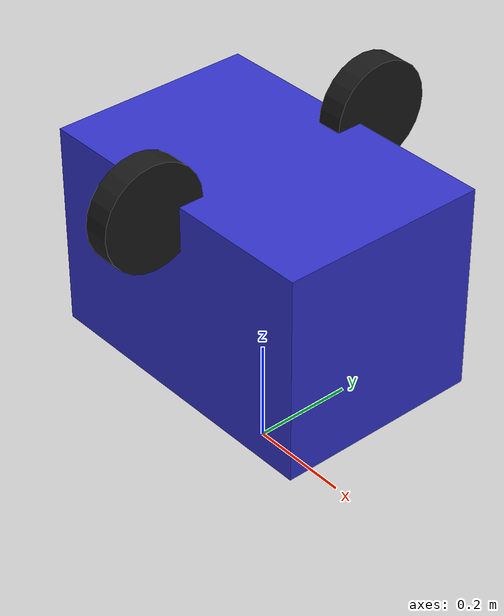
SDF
<?xml version="1.0"?>
<sdf version="1.7">
  <model name="test_box">
    <pose>0 0 0.4 0 0 0</pose>

    <link name="base_link">
      <inertial>
        <mass>2.0</mass>
        <inertia>
          <ixx>0.2</ixx>
          <iyy>0.2</iyy>
          <izz>0.2</izz>
        </inertia>
      </inertial>
      <collision name="collision">
        <geometry>
          <box>
            <size>0.6 0.4 0.4</size>
          </box>
        </geometry>
      </collision>
      <visual name="visual">
        <geometry>
          <box>
            <size>0.6 0.4 0.4</size>
          </box>
        </geometry>
        <material>
          <ambient>0.2 0.2 0.8 1</ambient>
          <diffuse>0.2 0.2 0.8 1</diffuse>
        </material>
      </visual>
    </link>

    <link name="left_wheel">
      <pose>0 0.25 0.2 0 1.5708 0</pose>
      <collision name="collision">
        <geometry>
          <cylinder>
            <radius>0.1</radius>
            <length>0.05</length>
          </cylinder>
        </geometry>
      </collision>
      <visual name="visual">
        <geometry>
          <cylinder>
            <radius>0.1</radius>
            <length>0.05</length>
          </cylinder>
        </geometry>
        <material>
          <ambient>0.1 0.1 0.1 1</ambient>
        </material>
      </visual>
    </link>

    <link name="right_wheel">
      <pose>0 -0.25 0.2 0 1.5708 0</pose>
      <collision name="collision">
        <geometry>
          <cylinder>
            <radius>0.1</radius>
            <length>0.05</length>
          </cylinder>
        </geometry>
      </collision>
      <visual name="visual">
        <geometry>
          <cylinder>
            <radius>0.1</radius>
            <length>0.05</length>
          </cylinder>
        </geometry>
        <material>
          <ambient>0.1 0.1 0.1 1</ambient>
        </material>
      </visual>
    </link>

    <joint name="left_wheel_joint" type="revolute">
      <parent>base_link</parent>
      <child>left_wheel</child>
      <pose>0 0.25 0.2 0 0 0</pose>
      <axis>
        <xyz>0 1 0</xyz>
        <limit>
          <lower>-1e16</lower>
          <upper>1e16</upper>
        </limit>
      </axis>
    </joint>

    <joint name="right_wheel_joint" type="revolute">
      <parent>base_link</parent>
      <child>right_wheel</child>
      <pose>0 -0.25 0.2 0 0 0</pose>
      <axis>
        <xyz>0 1 0</xyz>
        <limit>
          <lower>-1e16</lower>
          <upper>1e16</upper>
        </limit>
      </axis>
    </joint>

    <plugin name="diff_drive" filename="libignition-gazebo-diff-drive-system.so">
      <left_joint>left_wheel_joint</left_joint>
      <right_joint>right_wheel_joint</right_joint>
      <wheel_separation>0.5</wheel_separation>
      <wheel_radius>0.1</wheel_radius>
      <topic>/model/test_box/cmd_vel</topic>
      <odom_topic>/model/test_box/odom</odom_topic>
      <max_lin_vel>2.0</max_lin_vel>
      <max_ang_vel>1.0</max_ang_vel>
    </plugin>
  </model>
</sdf>
